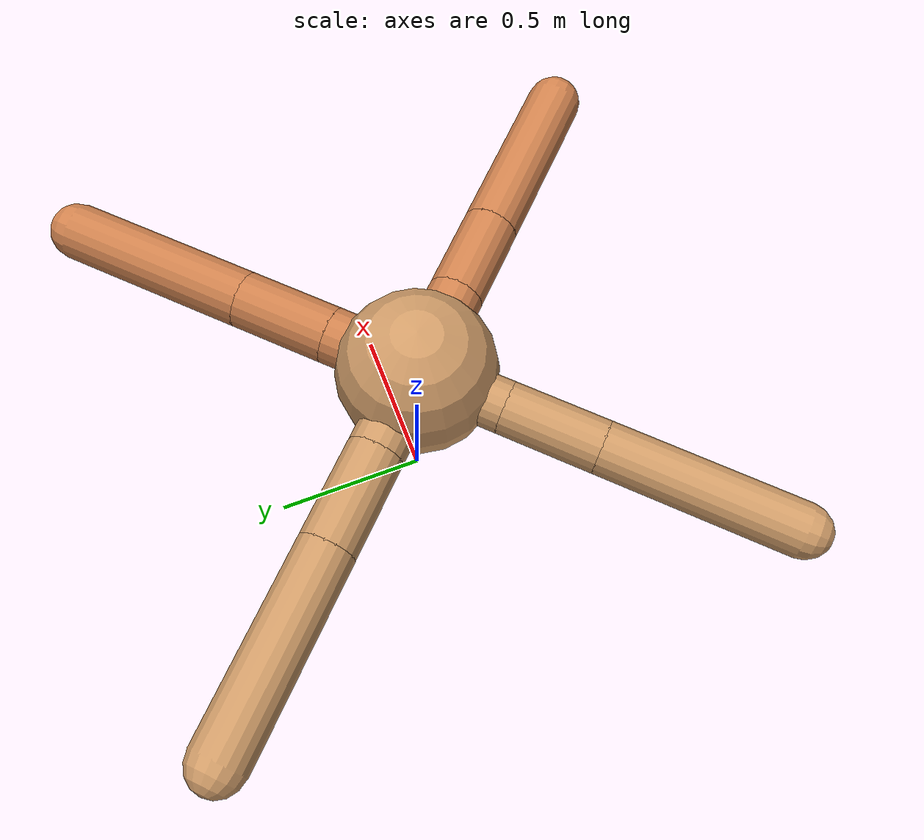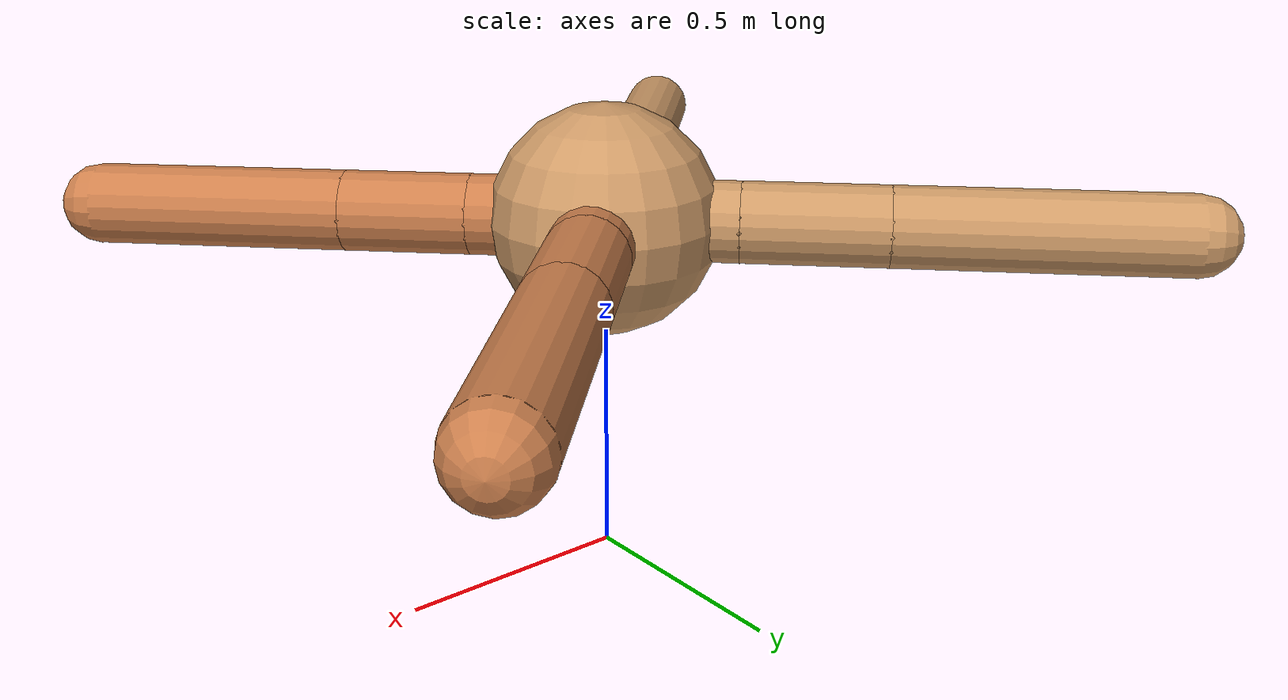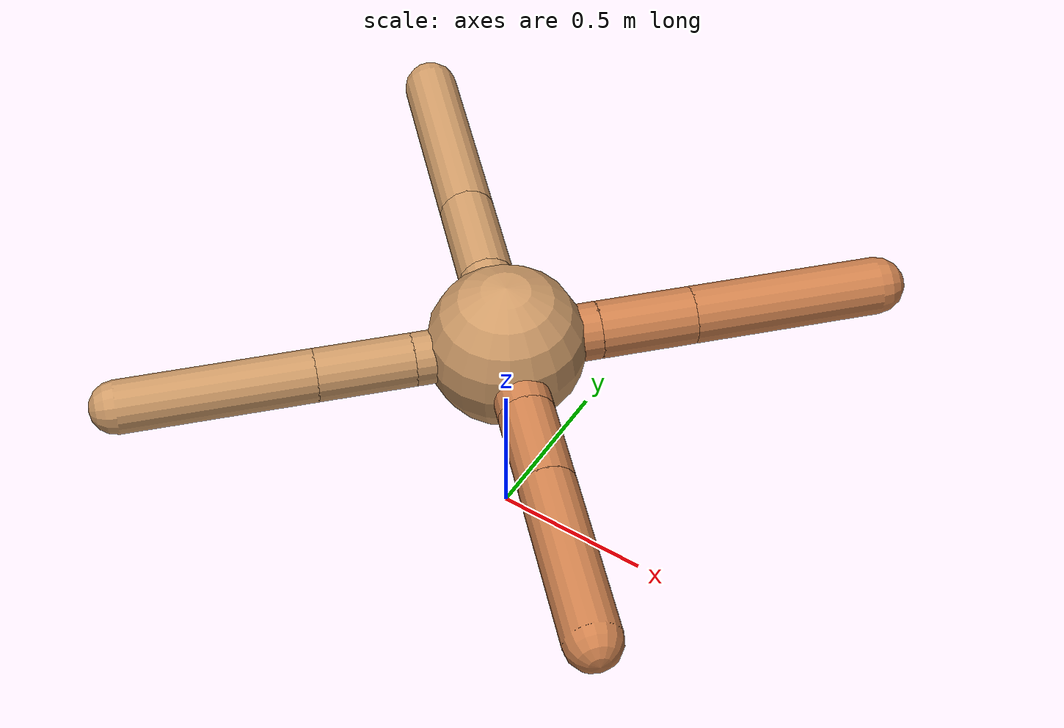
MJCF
<?xml version="1.0" ?>
<mujoco model="ant">

	<compiler angle="degree" coordinate="local" inertiafromgeom="true"/>

	<option integrator="RK4" timestep="0.01"/>

	<custom>

		<numeric data="0.0 0.0 0.55 1.0 0.0 0.0 0.0 0.0 1.0 0.0 -1.0 0.0 -1.0 0.0 1.0" name="init_qpos"/>

	</custom>

	<default>

		<joint armature="1" damping="1" limited="true"/>

		<geom conaffinity="0" condim="3" density="5.0" friction="1.5 0.1 0.1" margin="0.01" rgba="0.8 0.6 0.4 1"/>

	</default>

	<worldbody>

		<body name="torso" pos="0 0 0.75">

			<geom name="torso_geom" pos="0 0 0" size="0.24367733510867845" type="sphere"/>

			<!--joint armature="0" damping="0" limited="false" margin="0.01" name="root" pos="0 0 0" type="free"/-->

			<body name="front_left_leg" pos="0 0 0">

				<geom fromto="0 0 0 0.2 0.2 0" name="aux_1_geom" size="0.08792448243397015" type="capsule" rgba=".8 .5 .3 1"/>

				<body name="aux_1" pos="0.2 0.2 0">

					<joint axis="0 0 1" name="hip_1" pos="0.0 0.0 0.0" range="-40 40" type="hinge"/>

					<geom fromto="0 0 0 0.20743955072215614 0.20743955072215614 0" name="left_leg_geom" size="0.08792448243397015" type="capsule" rgba=".8 .5 .3 1"/>

					<body pos="0.20743955072215614 0.20743955072215614 0" name="front_left_foot">

						<joint axis="-1 1 0" name="ankle_1" pos="0.0 0.0 0.0" range="30 100" type="hinge"/>

						<geom fromto="0 0 0 0.4148791014443123 0.4148791014443123 0" name="left_ankle_geom" size="0.08792448243397015" type="capsule" rgba=".8 .5 .3 1"/>

					</body>

				</body>

			</body>

			<body name="front_right_leg" pos="0 0 0">

				<geom fromto="0 0 0 -0.2 0.2 0" name="aux_2_geom" size="0.08631472522356333" type="capsule"/>

				<body name="aux_2" pos="-0.2 0.2 0">

					<joint axis="0 0 1" name="hip_2" pos="0.0 0.0 0.0" range="-40 40" type="hinge"/>

					<geom fromto="0 0 0 -0.2161015187943539 0.2161015187943539 0" name="right_leg_geom" size="0.08631472522356333" type="capsule"/>

					<body pos="-0.2161015187943539 0.2161015187943539 0" name="front_right_foot">

						<joint axis="1 1 0" name="ankle_2" pos="0.0 0.0 0.0" range="-100 -30" type="hinge"/>

						<geom fromto="0 0 0 -0.4322030375887078 0.4322030375887078 0" name="right_ankle_geom" size="0.08631472522356333" type="capsule"/>

					</body>

				</body>

			</body>

			<body name="left_back_leg" pos="0 0 0">

				<geom fromto="0 0 0 -0.2 -0.2 0" name="aux_3_geom" size="0.0808506758930431" type="capsule"/>

				<body name="aux_3" pos="-0.2 -0.2 0">

					<joint axis="0 0 1" name="hip_3" pos="0.0 0.0 0.0" range="-40 40" type="hinge"/>

					<geom fromto="0 0 0 -0.20821462631915366 -0.20821462631915366 0" name="back_leg_geom" size="0.0808506758930431" type="capsule"/>

					<body pos="-0.20821462631915366 -0.20821462631915366 0" name="left_back_foot">

						<joint axis="-1 1 0" name="ankle_3" pos="0.0 0.0 0.0" range="-100 -30" type="hinge"/>

						<geom fromto="0 0 0 -0.4164292526383073 -0.4164292526383073 0" name="third_ankle_geom" size="0.0808506758930431" type="capsule"/>

					</body>

				</body>

			</body>

			<body name="right_back_leg" pos="0 0 0">

				<geom fromto="0 0 0 0.2 -0.2 0" name="aux_4_geom" size="0.08601417024061052" type="capsule" rgba=".8 .5 .3 1"/>

				<body name="aux_4" pos="0.2 -0.2 0">

					<joint axis="0 0 1" name="hip_4" pos="0.0 0.0 0.0" range="-40 40" type="hinge"/>

					<geom fromto="0 0 0 0.1905854839911712 -0.1905854839911712 0" name="rightback_leg_geom" size="0.08601417024061052" type="capsule" rgba=".8 .5 .3 1"/>

					<body pos="0.1905854839911712 -0.1905854839911712 0" name="right_back_foot">

						<joint axis="1 1 0" name="ankle_4" pos="0.0 0.0 0.0" range="30 100" type="hinge"/>

						<geom fromto="0 0 0 0.3811709679823424 -0.3811709679823424 0" name="fourth_ankle_geom" size="0.08601417024061052" type="capsule" rgba=".8 .5 .3 1"/>

					</body>

				</body>

			</body>

		</body>

	</worldbody>

	<actuator>

		<motor ctrllimited="true" ctrlrange="-1.0 1.0" joint="hip_4" gear="150"/>

		<motor ctrllimited="true" ctrlrange="-1.0 1.0" joint="ankle_4" gear="150"/>

		<motor ctrllimited="true" ctrlrange="-1.0 1.0" joint="hip_1" gear="150"/>

		<motor ctrllimited="true" ctrlrange="-1.0 1.0" joint="ankle_1" gear="150"/>

		<motor ctrllimited="true" ctrlrange="-1.0 1.0" joint="hip_2" gear="150"/>

		<motor ctrllimited="true" ctrlrange="-1.0 1.0" joint="ankle_2" gear="150"/>

		<motor ctrllimited="true" ctrlrange="-1.0 1.0" joint="hip_3" gear="150"/>

		<motor ctrllimited="true" ctrlrange="-1.0 1.0" joint="ankle_3" gear="150"/>

	</actuator>

</mujoco>
